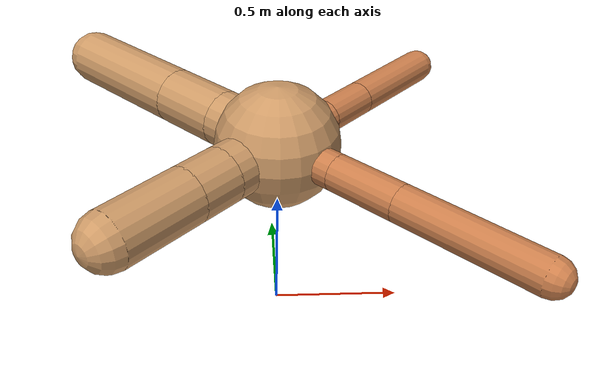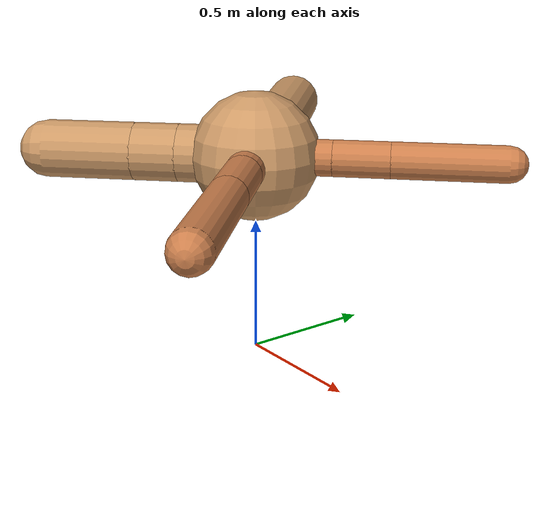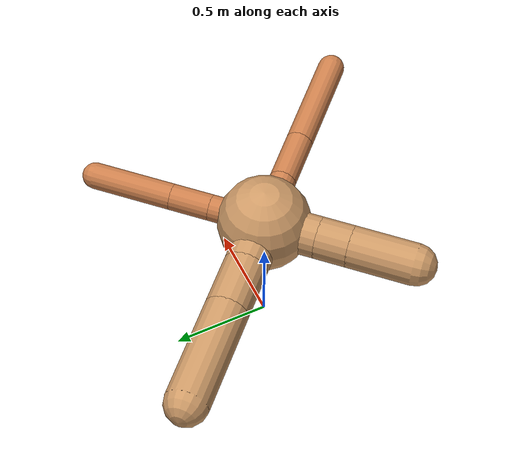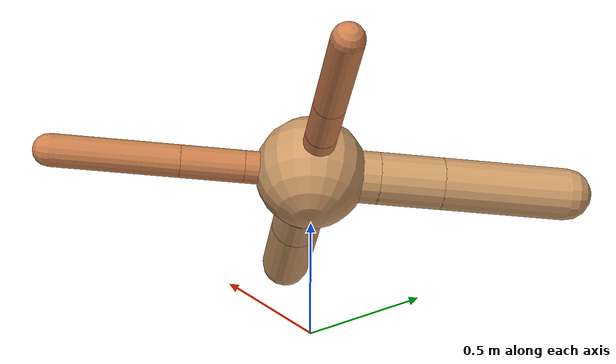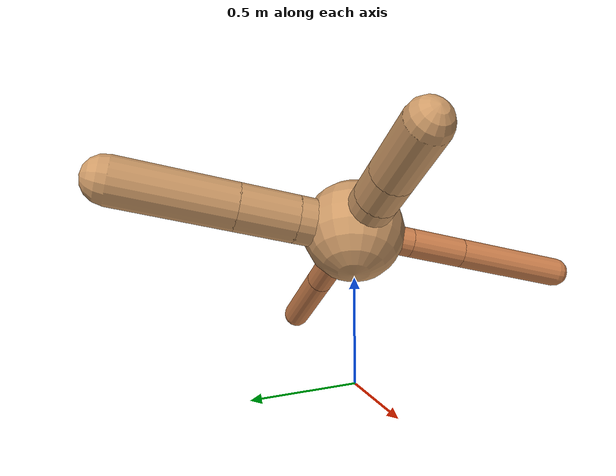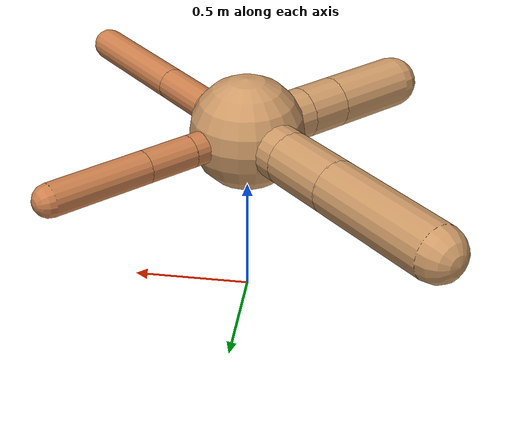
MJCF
<?xml version="1.0" ?>
<mujoco model="ant">

	<compiler angle="degree" coordinate="local" inertiafromgeom="true"/>

	<option integrator="RK4" timestep="0.01"/>

	<custom>

		<numeric data="0.0 0.0 0.55 1.0 0.0 0.0 0.0 0.0 1.0 0.0 -1.0 0.0 -1.0 0.0 1.0" name="init_qpos"/>

	</custom>

	<default>

		<joint armature="1" damping="1" limited="true"/>

		<geom conaffinity="0" condim="3" density="5.0" friction="1.5 0.1 0.1" margin="0.01" rgba="0.8 0.6 0.4 1"/>

	</default>

	<worldbody>

		<body name="torso" pos="0 0 0.75">

			<geom name="torso_geom" pos="0 0 0" size="0.2377141730517689" type="sphere"/>

			<!--joint armature="0" damping="0" limited="false" margin="0.01" name="root" pos="0 0 0" type="free"/-->

			<body name="front_left_leg" pos="0 0 0">

				<geom fromto="0 0 0 0.2 0.2 0" name="aux_1_geom" size="0.06759274385419563" type="capsule" rgba=".8 .5 .3 1"/>

				<body name="aux_1" pos="0.2 0.2 0">

					<joint axis="0 0 1" name="hip_1" pos="0.0 0.0 0.0" range="-40 40" type="hinge"/>

					<geom fromto="0 0 0 0.14702759429342552 0.14702759429342552 0" name="left_leg_geom" size="0.06759274385419563" type="capsule" rgba=".8 .5 .3 1"/>

					<body pos="0.14702759429342552 0.14702759429342552 0" name="front_left_foot">

						<joint axis="-1 1 0" name="ankle_1" pos="0.0 0.0 0.0" range="30 100" type="hinge"/>

						<geom fromto="0 0 0 0.29405518858685104 0.29405518858685104 0" name="left_ankle_geom" size="0.06759274385419563" type="capsule" rgba=".8 .5 .3 1"/>

					</body>

				</body>

			</body>

			<body name="front_right_leg" pos="0 0 0">

				<geom fromto="0 0 0 -0.2 0.2 0" name="aux_2_geom" size="0.11210584574738583" type="capsule"/>

				<body name="aux_2" pos="-0.2 0.2 0">

					<joint axis="0 0 1" name="hip_2" pos="0.0 0.0 0.0" range="-40 40" type="hinge"/>

					<geom fromto="0 0 0 -0.1942932842866373 0.1942932842866373 0" name="right_leg_geom" size="0.11210584574738583" type="capsule"/>

					<body pos="-0.1942932842866373 0.1942932842866373 0" name="front_right_foot">

						<joint axis="1 1 0" name="ankle_2" pos="0.0 0.0 0.0" range="-100 -30" type="hinge"/>

						<geom fromto="0 0 0 -0.3885865685732746 0.3885865685732746 0" name="right_ankle_geom" size="0.11210584574738583" type="capsule"/>

					</body>

				</body>

			</body>

			<body name="left_back_leg" pos="0 0 0">

				<geom fromto="0 0 0 -0.2 -0.2 0" name="aux_3_geom" size="0.10789542486623878" type="capsule"/>

				<body name="aux_3" pos="-0.2 -0.2 0">

					<joint axis="0 0 1" name="hip_3" pos="0.0 0.0 0.0" range="-40 40" type="hinge"/>

					<geom fromto="0 0 0 -0.11810476237256262 -0.11810476237256262 0" name="back_leg_geom" size="0.10789542486623878" type="capsule"/>

					<body pos="-0.11810476237256262 -0.11810476237256262 0" name="left_back_foot">

						<joint axis="-1 1 0" name="ankle_3" pos="0.0 0.0 0.0" range="-100 -30" type="hinge"/>

						<geom fromto="0 0 0 -0.23620952474512524 -0.23620952474512524 0" name="third_ankle_geom" size="0.10789542486623878" type="capsule"/>

					</body>

				</body>

			</body>

			<body name="right_back_leg" pos="0 0 0">

				<geom fromto="0 0 0 0.2 -0.2 0" name="aux_4_geom" size="0.0696501570549302" type="capsule" rgba=".8 .5 .3 1"/>

				<body name="aux_4" pos="0.2 -0.2 0">

					<joint axis="0 0 1" name="hip_4" pos="0.0 0.0 0.0" range="-40 40" type="hinge"/>

					<geom fromto="0 0 0 0.1895729658780957 -0.1895729658780957 0" name="rightback_leg_geom" size="0.0696501570549302" type="capsule" rgba=".8 .5 .3 1"/>

					<body pos="0.1895729658780957 -0.1895729658780957 0" name="right_back_foot">

						<joint axis="1 1 0" name="ankle_4" pos="0.0 0.0 0.0" range="30 100" type="hinge"/>

						<geom fromto="0 0 0 0.3791459317561914 -0.3791459317561914 0" name="fourth_ankle_geom" size="0.0696501570549302" type="capsule" rgba=".8 .5 .3 1"/>

					</body>

				</body>

			</body>

		</body>

	</worldbody>

	<actuator>

		<motor ctrllimited="true" ctrlrange="-1.0 1.0" joint="hip_4" gear="150"/>

		<motor ctrllimited="true" ctrlrange="-1.0 1.0" joint="ankle_4" gear="150"/>

		<motor ctrllimited="true" ctrlrange="-1.0 1.0" joint="hip_1" gear="150"/>

		<motor ctrllimited="true" ctrlrange="-1.0 1.0" joint="ankle_1" gear="150"/>

		<motor ctrllimited="true" ctrlrange="-1.0 1.0" joint="hip_2" gear="150"/>

		<motor ctrllimited="true" ctrlrange="-1.0 1.0" joint="ankle_2" gear="150"/>

		<motor ctrllimited="true" ctrlrange="-1.0 1.0" joint="hip_3" gear="150"/>

		<motor ctrllimited="true" ctrlrange="-1.0 1.0" joint="ankle_3" gear="150"/>

	</actuator>

</mujoco>
